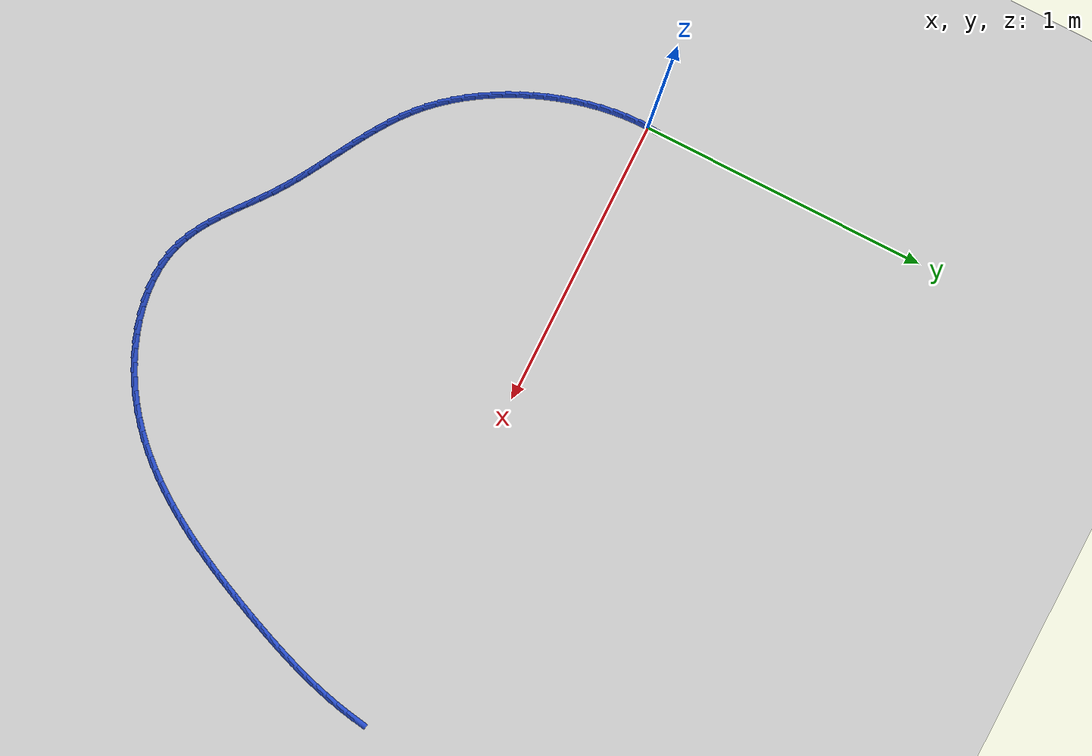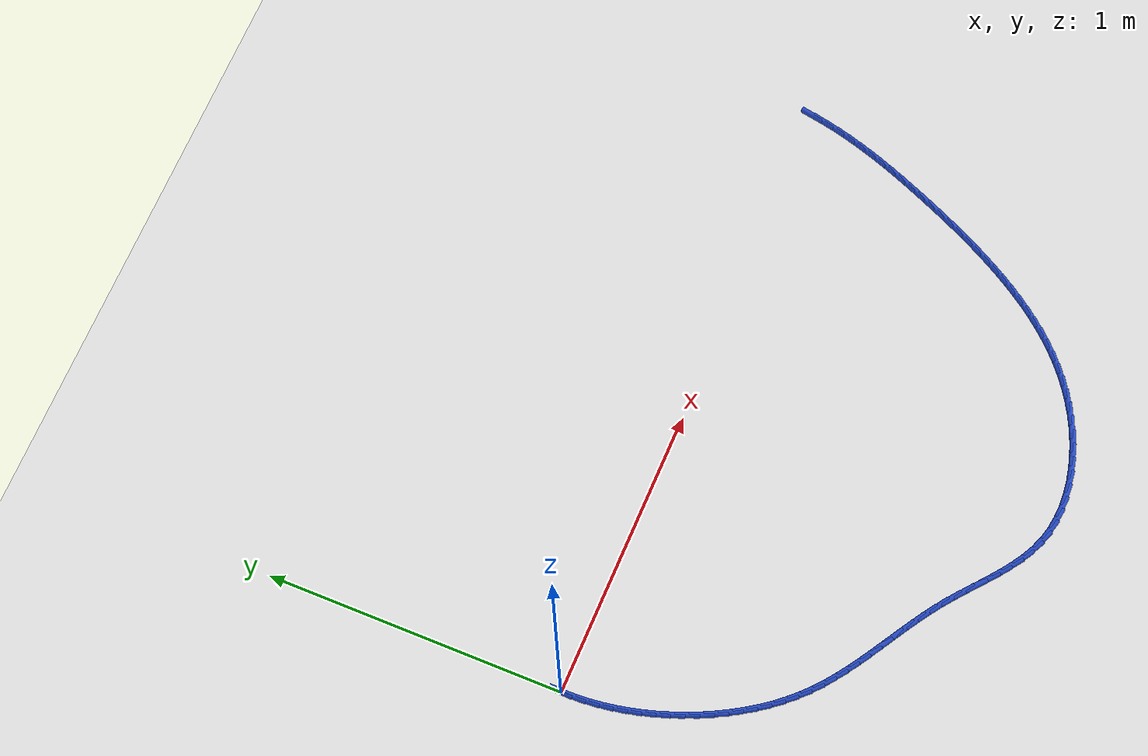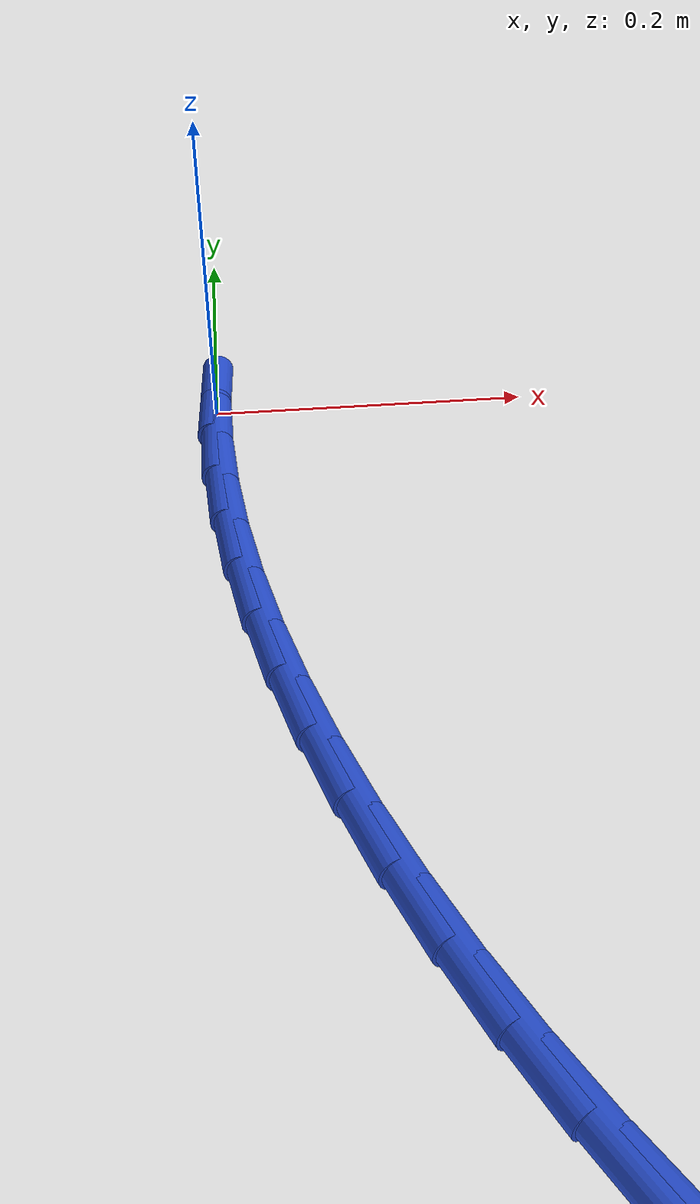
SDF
<sdf version="1.6">
 <world name="default">
  <model name="ground_plane">
   <static>1</static>
   <link name="link">
    <collision name="collision">
     <geometry><plane><normal>0 0 1</normal><size>100 100</size></plane></geometry>
     <surface><friction><ode><mu>100</mu><mu2>50</mu2></ode></friction></surface>
    </collision>
    <visual name="visual">
     <cast_shadows>0</cast_shadows>
     <geometry><plane><normal>0 0 1</normal><size>100 100</size></plane></geometry>
     <material>
      <script><uri>file://media/materials/scripts/gazebo.material</uri><name>Gazebo/WhiteGlow</name></script>
     </material>
    </visual>
   </link>
  </model>
  <model name="line">
   <link name="link_0">
    <pose>1.0408340855860843e-17 1.3877787807814457e-17 0.01 0 1.57 1.5257420830498938</pose>
    <collision name="collision">
     <geometry><cylinder><radius>0.01</radius><length>0.08</length></cylinder></geometry>
    </collision>
    <visual name="visual">
     <material>
      <script><name>Gazebo/Blue</name><uri>file://media/materials/scripts/gazebo.material</uri></script>
     </material>
     <geometry><cylinder><radius>0.01</radius><length>0.08</length></cylinder></geometry>
    </visual>
   </link>
   <link name="link_81">
    <pose>2.174339352551957 0.01610571546569134 0.01 0 1.57 1.3889501642694382</pose>
    <collision name="collision">
     <geometry><cylinder><radius>0.01</radius><length>0.08</length></cylinder></geometry>
    </collision>
    <visual name="visual">
     <material>
      <script><name>Gazebo/Blue</name><uri>file://media/materials/scripts/gazebo.material</uri></script>
     </material>
     <geometry><cylinder><radius>0.01</radius><length>0.08</length></cylinder></geometry>
    </visual>
   </link>
   <link name="link_82">
    <pose>2.1662585075446428 -0.02784118657049474 0.01 0 1.57 1.3545400528799303</pose>
    <collision name="collision">
     <geometry><cylinder><radius>0.01</radius><length>0.08</length></cylinder></geometry>
    </collision>
    <visual name="visual">
     <material>
      <script><name>Gazebo/Blue</name><uri>file://media/materials/scripts/gazebo.material</uri></script>
     </material>
     <geometry><cylinder><radius>0.01</radius><length>0.08</length></cylinder></geometry>
    </visual>
   </link>
   <link name="link_83">
    <pose>2.156690890659331 -0.07139137244277999 0.01 0 1.57 1.322704913757637</pose>
    <collision name="collision">
     <geometry><cylinder><radius>0.01</radius><length>0.08</length></cylinder></geometry>
    </collision>
    <visual name="visual">
     <material>
      <script><name>Gazebo/Blue</name><uri>file://media/materials/scripts/gazebo.material</uri></script>
     </material>
     <geometry><cylinder><radius>0.01</radius><length>0.08</length></cylinder></geometry>
    </visual>
   </link>
   <link name="link_84">
    <pose>2.1457542682107396 -0.11456624707189816 0.01 0 1.57 1.2935052513373297</pose>
    <collision name="collision">
     <geometry><cylinder><radius>0.01</radius><length>0.08</length></cylinder></geometry>
    </collision>
    <visual name="visual">
     <material>
      <script><name>Gazebo/Blue</name><uri>file://media/materials/scripts/gazebo.material</uri></script>
     </material>
     <geometry><cylinder><radius>0.01</radius><length>0.08</length></cylinder></geometry>
    </visual>
   </link>
   <link name="link_85">
    <pose>2.1335664065135855 -0.15738721537858238 0.01 0 1.57 1.2669749650793514</pose>
    <collision name="collision">
     <geometry><cylinder><radius>0.01</radius><length>0.08</length></cylinder></geometry>
    </collision>
    <visual name="visual">
     <material>
      <script><name>Gazebo/Blue</name><uri>file://media/materials/scripts/gazebo.material</uri></script>
     </material>
     <geometry><cylinder><radius>0.01</radius><length>0.08</length></cylinder></geometry>
    </visual>
   </link>
   <link name="link_86">
    <pose>2.120245071882583 -0.19987568228356556 0.01 0 1.57 1.2431272048756725</pose>
    <collision name="collision">
     <geometry><cylinder><radius>0.01</radius><length>0.08</length></cylinder></geometry>
    </collision>
    <visual name="visual">
     <material>
      <script><name>Gazebo/Blue</name><uri>file://media/materials/scripts/gazebo.material</uri></script>
     </material>
     <geometry><cylinder><radius>0.01</radius><length>0.08</length></cylinder></geometry>
    </visual>
   </link>
   <link name="link_87">
    <pose>2.1059080306324516 -0.24205305270758168 0.01 0 1.57 1.2219599957089848</pose>
    <collision name="collision">
     <geometry><cylinder><radius>0.01</radius><length>0.08</length></cylinder></geometry>
    </collision>
    <visual name="visual">
     <material>
      <script><name>Gazebo/Blue</name><uri>file://media/materials/scripts/gazebo.material</uri></script>
     </material>
     <geometry><cylinder><radius>0.01</radius><length>0.08</length></cylinder></geometry>
    </visual>
   </link>
   <link name="link_88">
    <pose>2.0906730490779064 -0.2839407315713621 0.01 0 1.57 1.203461397400954</pose>
    <collision name="collision">
     <geometry><cylinder><radius>0.01</radius><length>0.08</length></cylinder></geometry>
    </collision>
    <visual name="visual">
     <material>
      <script><name>Gazebo/Blue</name><uri>file://media/materials/scripts/gazebo.material</uri></script>
     </material>
     <geometry><cylinder><radius>0.01</radius><length>0.08</length></cylinder></geometry>
    </visual>
   </link>
   <link name="link_89">
    <pose>2.0746578935336646 -0.3255601237956408 0.01 0 1.57 1.1876140702316524</pose>
    <collision name="collision">
     <geometry><cylinder><radius>0.01</radius><length>0.08</length></cylinder></geometry>
    </collision>
    <visual name="visual">
     <material>
      <script><name>Gazebo/Blue</name><uri>file://media/materials/scripts/gazebo.material</uri></script>
     </material>
     <geometry><cylinder><radius>0.01</radius><length>0.08</length></cylinder></geometry>
    </visual>
   </link>
   <link name="link_90">
    <pose>2.057980330314442 -0.36693263430115075 0.01 0 1.57 1.1743991973009729</pose>
    <collision name="collision">
     <geometry><cylinder><radius>0.01</radius><length>0.08</length></cylinder></geometry>
    </collision>
    <visual name="visual">
     <material>
      <script><name>Gazebo/Blue</name><uri>file://media/materials/scripts/gazebo.material</uri></script>
     </material>
     <geometry><cylinder><radius>0.01</radius><length>0.08</length></cylinder></geometry>
    </visual>
   </link>
   <link name="link_91">
    <pose>2.0407581257349565 -0.40807966800862494 0.01 0 1.57 1.1637997670919964</pose>
    <collision name="collision">
     <geometry><cylinder><radius>0.01</radius><length>0.08</length></cylinder></geometry>
    </collision>
    <visual name="visual">
     <material>
      <script><name>Gazebo/Blue</name><uri>file://media/materials/scripts/gazebo.material</uri></script>
     </material>
     <geometry><cylinder><radius>0.01</radius><length>0.08</length></cylinder></geometry>
    </visual>
   </link>
   <link name="link_92">
    <pose>2.023109046019623 -0.44902262981094 0.01 0 1.57 1.1549796135763377</pose>
    <collision name="collision">
     <geometry><cylinder><radius>0.01</radius><length>0.08</length></cylinder></geometry>
    </collision>
    <visual name="visual">
     <material>
      <script><name>Gazebo/Blue</name><uri>file://media/materials/scripts/gazebo.material</uri></script>
     </material>
     <geometry><cylinder><radius>0.01</radius><length>0.08</length></cylinder></geometry>
    </visual>
   </link>
   <link name="link_93">
    <pose>2.0051155618706558 -0.4897720361724187 0.01 0 1.57 1.1447706381986502</pose>
    <collision name="collision">
     <geometry><cylinder><radius>0.01</radius><length>0.08</length></cylinder></geometry>
    </collision>
    <visual name="visual">
     <material>
      <script><name>Gazebo/Blue</name><uri>file://media/materials/scripts/gazebo.material</uri></script>
     </material>
     <geometry><cylinder><radius>0.01</radius><length>0.08</length></cylinder></geometry>
    </visual>
   </link>
   <link name="link_94">
    <pose>1.9867247132834671 -0.5302966241054129 0.01 0 1.57 1.1324091604863993</pose>
    <collision name="collision">
     <geometry><cylinder><radius>0.01</radius><length>0.08</length></cylinder></geometry>
    </collision>
    <visual name="visual">
     <material>
      <script><name>Gazebo/Blue</name><uri>file://media/materials/scripts/gazebo.material</uri></script>
     </material>
     <geometry><cylinder><radius>0.01</radius><length>0.08</length></cylinder></geometry>
    </visual>
   </link>
   <link name="link_95">
    <pose>1.9678510623096768 -0.5705551113974986 0.01 0 1.57 1.1178919904817513</pose>
    <collision name="collision">
     <geometry><cylinder><radius>0.01</radius><length>0.08</length></cylinder></geometry>
    </collision>
    <visual name="visual">
     <material>
      <script><name>Gazebo/Blue</name><uri>file://media/materials/scripts/gazebo.material</uri></script>
     </material>
     <geometry><cylinder><radius>0.01</radius><length>0.08</length></cylinder></geometry>
    </visual>
   </link>
   <link name="link_96">
    <pose>1.9484091710009055 -0.6105062158362525 0.01 0 1.57 1.1012203164192498</pose>
    <collision name="collision">
     <geometry><cylinder><radius>0.01</radius><length>0.08</length></cylinder></geometry>
    </collision>
    <visual name="visual">
     <material>
      <script><name>Gazebo/Blue</name><uri>file://media/materials/scripts/gazebo.material</uri></script>
     </material>
     <geometry><cylinder><radius>0.01</radius><length>0.08</length></cylinder></geometry>
    </visual>
   </link>
   <link name="link_97">
    <pose>1.9283136014087723 -0.6501086552092494 0.01 0 1.57 1.082401728507617</pose>
    <collision name="collision">
     <geometry><cylinder><radius>0.01</radius><length>0.08</length></cylinder></geometry>
    </collision>
    <visual name="visual">
     <material>
      <script><name>Gazebo/Blue</name><uri>file://media/materials/scripts/gazebo.material</uri></script>
     </material>
     <geometry><cylinder><radius>0.01</radius><length>0.08</length></cylinder></geometry>
    </visual>
   </link>
   <link name="link_98">
    <pose>1.9074789155848977 -0.6893211473040662 0.01 0 1.57 1.061452505541421</pose>
    <collision name="collision">
     <geometry><cylinder><radius>0.01</radius><length>0.08</length></cylinder></geometry>
    </collision>
    <visual name="visual">
     <material>
      <script><name>Gazebo/Blue</name><uri>file://media/materials/scripts/gazebo.material</uri></script>
     </material>
     <geometry><cylinder><radius>0.01</radius><length>0.08</length></cylinder></geometry>
    </visual>
   </link>
   <link name="link_99">
    <pose>1.8858196755809022 -0.7281024099082791 0.01 0 1.57 1.0383853793921216</pose>
    <collision name="collision">
     <geometry><cylinder><radius>0.01</radius><length>0.08</length></cylinder></geometry>
    </collision>
    <visual name="visual">
     <material>
      <script><name>Gazebo/Blue</name><uri>file://media/materials/scripts/gazebo.material</uri></script>
     </material>
     <geometry><cylinder><radius>0.01</radius><length>0.08</length></cylinder></geometry>
    </visual>
   </link>
   <link name="link_100">
    <pose>1.8632503416403992 -0.7664100434904361 0.01 0 1.57 1.0127249083158532</pose>
    <collision name="collision">
     <geometry><cylinder><radius>0.01</radius><length>0.08</length></cylinder></geometry>
    </collision>
    <visual name="visual">
     <material>
      <script><name>Gazebo/Blue</name><uri>file://media/materials/scripts/gazebo.material</uri></script>
     </material>
     <geometry><cylinder><radius>0.01</radius><length>0.08</length></cylinder></geometry>
    </visual>
   </link>
   <link name="link_101">
    <pose>1.8396819284599766 -0.8041638344472414 0.01 0 1.57 0.9838230003383691</pose>
    <collision name="collision">
     <geometry><cylinder><radius>0.01</radius><length>0.08</length></cylinder></geometry>
    </collision>
    <visual name="visual">
     <material>
      <script><name>Gazebo/Blue</name><uri>file://media/materials/scripts/gazebo.material</uri></script>
     </material>
     <geometry><cylinder><radius>0.01</radius><length>0.08</length></cylinder></geometry>
    </visual>
   </link>
   <link name="link_102">
    <pose>1.8150212505072683 -0.8412374726460661 0.01 0 1.57 0.9515837591283303</pose>
    <collision name="collision">
     <geometry><cylinder><radius>0.01</radius><length>0.08</length></cylinder></geometry>
    </collision>
    <visual name="visual">
     <material>
      <script><name>Gazebo/Blue</name><uri>file://media/materials/scripts/gazebo.material</uri></script>
     </material>
     <geometry><cylinder><radius>0.01</radius><length>0.08</length></cylinder></geometry>
    </visual>
   </link>
   <link name="link_103">
    <pose>1.7891748676470876 -0.877501853747978 0.01 0 1.57 0.9159608502179118</pose>
    <collision name="collision">
     <geometry><cylinder><radius>0.01</radius><length>0.08</length></cylinder></geometry>
    </collision>
    <visual name="visual">
     <material>
      <script><name>Gazebo/Blue</name><uri>file://media/materials/scripts/gazebo.material</uri></script>
     </material>
     <geometry><cylinder><radius>0.01</radius><length>0.08</length></cylinder></geometry>
    </visual>
   </link>
   <link name="link_104">
    <pose>1.7620493397442496 -0.912827873414045 0.01 0 1.57 0.8769317698395016</pose>
    <collision name="collision">
     <geometry><cylinder><radius>0.01</radius><length>0.08</length></cylinder></geometry>
    </collision>
    <visual name="visual">
     <material>
      <script><name>Gazebo/Blue</name><uri>file://media/materials/scripts/gazebo.material</uri></script>
     </material>
     <geometry><cylinder><radius>0.01</radius><length>0.08</length></cylinder></geometry>
    </visual>
   </link>
   <link name="link_105">
    <pose>1.7335512266635689 -0.9470864273053344 0.01 0 1.57 0.8345104075909775</pose>
    <collision name="collision">
     <geometry><cylinder><radius>0.01</radius><length>0.08</length></cylinder></geometry>
    </collision>
    <visual name="visual">
     <material>
      <script><name>Gazebo/Blue</name><uri>file://media/materials/scripts/gazebo.material</uri></script>
     </material>
     <geometry><cylinder><radius>0.01</radius><length>0.08</length></cylinder></geometry>
    </visual>
   </link>
   <link name="link_106">
    <pose>1.7035870882698592 -0.9801484110829143 0.01 0 1.57 0.7887605562742858</pose>
    <collision name="collision">
     <geometry><cylinder><radius>0.01</radius><length>0.08</length></cylinder></geometry>
    </collision>
    <visual name="visual">
     <material>
      <script><name>Gazebo/Blue</name><uri>file://media/materials/scripts/gazebo.material</uri></script>
     </material>
     <geometry><cylinder><radius>0.01</radius><length>0.08</length></cylinder></geometry>
    </visual>
   </link>
   <link name="link_107">
    <pose>1.6720634844279376 -1.0118847204078518 0.01 0 1.57 0.7398094084082487</pose>
    <collision name="collision">
     <geometry><cylinder><radius>0.01</radius><length>0.08</length></cylinder></geometry>
    </collision>
    <visual name="visual">
     <material>
      <script><name>Gazebo/Blue</name><uri>file://media/materials/scripts/gazebo.material</uri></script>
     </material>
     <geometry><cylinder><radius>0.01</radius><length>0.08</length></cylinder></geometry>
    </visual>
   </link>
   <link name="link_108">
    <pose>1.6388869750026172 -1.042166250941214 0.01 0 1.57 0.6878595835521787</pose>
    <collision name="collision">
     <geometry><cylinder><radius>0.01</radius><length>0.08</length></cylinder></geometry>
    </collision>
    <visual name="visual">
     <material>
      <script><name>Gazebo/Blue</name><uri>file://media/materials/scripts/gazebo.material</uri></script>
     </material>
     <geometry><cylinder><radius>0.01</radius><length>0.08</length></cylinder></geometry>
    </visual>
   </link>
   <link name="link_109">
    <pose>1.6039641198587127 -1.0708638983440688 0.01 0 1.57 0.6331978047980353</pose>
    <collision name="collision">
     <geometry><cylinder><radius>0.01</radius><length>0.08</length></cylinder></geometry>
    </collision>
    <visual name="visual">
     <material>
      <script><name>Gazebo/Blue</name><uri>file://media/materials/scripts/gazebo.material</uri></script>
     </material>
     <geometry><cylinder><radius>0.01</radius><length>0.08</length></cylinder></geometry>
    </visual>
   </link>
   <link name="link_110">
    <pose>1.567201478861039 -1.0978485582774842 0.01 0 1.57 0.5761981876365603</pose>
    <collision name="collision">
     <geometry><cylinder><radius>0.01</radius><length>0.08</length></cylinder></geometry>
    </collision>
    <visual name="visual">
     <material>
      <script><name>Gazebo/Blue</name><uri>file://media/materials/scripts/gazebo.material</uri></script>
     </material>
     <geometry><cylinder><radius>0.01</radius><length>0.08</length></cylinder></geometry>
    </visual>
   </link>
   <link name="link_111">
    <pose>1.528505616951141 -1.1229911248851958 0.01 0 1.57 0.517734283548459</pose>
    <collision name="collision">
     <geometry><cylinder><radius>0.01</radius><length>0.08</length></cylinder></geometry>
    </collision>
    <visual name="visual">
     <material>
      <script><name>Gazebo/Blue</name><uri>file://media/materials/scripts/gazebo.material</uri></script>
     </material>
     <geometry><cylinder><radius>0.01</radius><length>0.08</length></cylinder></geometry>
    </visual>
   </link>
   <link name="link_112">
    <pose>1.4878659932855807 -1.146137716907211 0.01 0 1.57 0.45907462729926657</pose>
    <collision name="collision">
     <geometry><cylinder><radius>0.01</radius><length>0.08</length></cylinder></geometry>
    </collision>
    <visual name="visual">
     <material>
      <script><name>Gazebo/Blue</name><uri>file://media/materials/scripts/gazebo.material</uri></script>
     </material>
     <geometry><cylinder><radius>0.01</radius><length>0.08</length></cylinder></geometry>
    </visual>
   </link>
   <link name="link_113">
    <pose>1.4455653073479067 -1.167046809482729 0.01 0 1.57 0.3994337091625199</pose>
    <collision name="collision">
     <geometry><cylinder><radius>0.01</radius><length>0.08</length></cylinder></geometry>
    </collision>
    <visual name="visual">
     <material>
      <script><name>Gazebo/Blue</name><uri>file://media/materials/scripts/gazebo.material</uri></script>
     </material>
     <geometry><cylinder><radius>0.01</radius><length>0.08</length></cylinder></geometry>
    </visual>
   </link>
   <link name="link_114">
    <pose>1.401951070203127 -1.18545750688054 0.01 0 1.57 0.3376398831796581</pose>
    <collision name="collision">
     <geometry><cylinder><radius>0.01</radius><length>0.08</length></cylinder></geometry>
    </collision>
    <visual name="visual">
     <material>
      <script><name>Gazebo/Blue</name><uri>file://media/materials/scripts/gazebo.material</uri></script>
     </material>
     <geometry><cylinder><radius>0.01</radius><length>0.08</length></cylinder></geometry>
    </visual>
   </link>
   <link name="link_115">
    <pose>1.3573707929162495 -1.201108913369432 0.01 0 1.57 0.2725070993879564</pose>
    <collision name="collision">
     <geometry><cylinder><radius>0.01</radius><length>0.08</length></cylinder></geometry>
    </collision>
    <visual name="visual">
     <material>
      <script><name>Gazebo/Blue</name><uri>file://media/materials/scripts/gazebo.material</uri></script>
     </material>
     <geometry><cylinder><radius>0.01</radius><length>0.08</length></cylinder></geometry>
    </visual>
   </link>
   <link name="link_116">
    <pose>1.3121719865522812 -1.2137401332181945 0.01 0 1.57 0.2028068590333508</pose>
    <collision name="collision">
     <geometry><cylinder><radius>0.01</radius><length>0.08</length></cylinder></geometry>
    </collision>
    <visual name="visual">
     <material>
      <script><name>Gazebo/Blue</name><uri>file://media/materials/scripts/gazebo.material</uri></script>
     </material>
     <geometry><cylinder><radius>0.01</radius><length>0.08</length></cylinder></geometry>
    </visual>
   </link>
   <link name="link_117">
    <pose>1.2667021621762322 -1.2230902706956162 0.01 0 1.57 0.12726033859105698</pose>
    <collision name="collision">
     <geometry><cylinder><radius>0.01</radius><length>0.08</length></cylinder></geometry>
    </collision>
    <visual name="visual">
     <material>
      <script><name>Gazebo/Blue</name><uri>file://media/materials/scripts/gazebo.material</uri></script>
     </material>
     <geometry><cylinder><radius>0.01</radius><length>0.08</length></cylinder></geometry>
    </visual>
   </link>
   <link name="link_118">
    <pose>1.2213088308531093 -1.2288984300704857 0.01 0 1.57 0.04456277416726064</pose>
    <collision name="collision">
     <geometry><cylinder><radius>0.01</radius><length>0.08</length></cylinder></geometry>
    </collision>
    <visual name="visual">
     <material>
      <script><name>Gazebo/Blue</name><uri>file://media/materials/scripts/gazebo.material</uri></script>
     </material>
     <geometry><cylinder><radius>0.01</radius><length>0.08</length></cylinder></geometry>
    </visual>
   </link>
   <link name="link_119">
    <pose>1.1763395036479198 -1.2309037156115923 0.01 0 1.57 -0.046540710133697705</pose>
    <collision name="collision">
     <geometry><cylinder><radius>0.01</radius><length>0.08</length></cylinder></geometry>
    </collision>
    <visual name="visual">
     <material>
      <script><name>Gazebo/Blue</name><uri>file://media/materials/scripts/gazebo.material</uri></script>
     </material>
     <geometry><cylinder><radius>0.01</radius><length>0.08</length></cylinder></geometry>
    </visual>
   </link>
   <link name="link_120">
    <pose>1.132141691625673 -1.2288452315877252 0.01 0 1.57 -0.14710350013031878</pose>
    <collision name="collision">
     <geometry><cylinder><radius>0.01</radius><length>0.08</length></cylinder></geometry>
    </collision>
    <visual name="visual">
     <material>
      <script><name>Gazebo/Blue</name><uri>file://media/materials/scripts/gazebo.material</uri></script>
     </material>
     <geometry><cylinder><radius>0.01</radius><length>0.08</length></cylinder></geometry>
    </visual>
   </link>
   <link name="link_121">
    <pose>1.0890629058513754 -1.2224620822676724 0.01 0 1.57 -0.25773088698406754</pose>
    <collision name="collision">
     <geometry><cylinder><radius>0.01</radius><length>0.08</length></cylinder></geometry>
    </collision>
    <visual name="visual">
     <material>
      <script><name>Gazebo/Blue</name><uri>file://media/materials/scripts/gazebo.material</uri></script>
     </material>
     <geometry><cylinder><radius>0.01</radius><length>0.08</length></cylinder></geometry>
    </visual>
   </link>
   <link name="link_122">
    <pose>1.0474506573900362 -1.2114933719202239 0.01 0 1.57 -0.37432228619774877</pose>
    <collision name="collision">
     <geometry><cylinder><radius>0.01</radius><length>0.08</length></cylinder></geometry>
    </collision>
    <visual name="visual">
     <material>
      <script><name>Gazebo/Blue</name><uri>file://media/materials/scripts/gazebo.material</uri></script>
     </material>
     <geometry><cylinder><radius>0.01</radius><length>0.08</length></cylinder></geometry>
    </visual>
   </link>
   <link name="link_123">
    <pose>1.0075591086466498 -1.1958222137726855 0.01 0 1.57 -0.47650148089441435</pose>
    <collision name="collision">
     <geometry><cylinder><radius>0.01</radius><length>0.08</length></cylinder></geometry>
    </collision>
    <visual name="visual">
     <material>
      <script><name>Gazebo/Blue</name><uri>file://media/materials/scripts/gazebo.material</uri></script>
     </material>
     <geometry><cylinder><radius>0.01</radius><length>0.08</length></cylinder></geometry>
    </visual>
   </link>
   <link name="link_124">
    <pose>0.9691960832542497 -1.1760202877836627 0.01 0 1.57 -0.5572531956582251</pose>
    <collision name="collision">
     <geometry><cylinder><radius>0.01</radius><length>0.08</length></cylinder></geometry>
    </collision>
    <visual name="visual">
     <material>
      <script><name>Gazebo/Blue</name><uri>file://media/materials/scripts/gazebo.material</uri></script>
     </material>
     <geometry><cylinder><radius>0.01</radius><length>0.08</length></cylinder></geometry>
    </visual>
   </link>
   <link name="link_125">
    <pose>0.9320361562870637 -1.1528648364358998 0.01 0 1.57 -0.6168794454758583</pose>
    <collision name="collision">
     <geometry><cylinder><radius>0.01</radius><length>0.08</length></cylinder></geometry>
    </collision>
    <visual name="visual">
     <material>
      <script><name>Gazebo/Blue</name><uri>file://media/materials/scripts/gazebo.material</uri></script>
     </material>
     <geometry><cylinder><radius>0.01</radius><length>0.08</length></cylinder></geometry>
    </visual>
   </link>
   <link name="link_126">
    <pose>0.8957538793598869 -1.127133138403004 0.01 0 1.57 -0.6565038279605733</pose>
    <collision name="collision">
     <geometry><cylinder><radius>0.01</radius><length>0.08</length></cylinder></geometry>
    </collision>
    <visual name="visual">
     <material>
      <script><name>Gazebo/Blue</name><uri>file://media/materials/scripts/gazebo.material</uri></script>
     </material>
     <geometry><cylinder><radius>0.01</radius><length>0.08</length></cylinder></geometry>
    </visual>
   </link>
   <link name="link_127">
    <pose>0.860023804087516 -1.0996024723585842 0.01 0 1.57 -0.6773066620334233</pose>
    <collision name="collision">
     <geometry><cylinder><radius>0.01</radius><length>0.08</length></cylinder></geometry>
    </collision>
    <visual name="visual">
     <material>
      <script><name>Gazebo/Blue</name><uri>file://media/materials/scripts/gazebo.material</uri></script>
     </material>
     <geometry><cylinder><radius>0.01</radius><length>0.08</length></cylinder></geometry>
    </visual>
   </link>
   <link name="link_128">
    <pose>0.8245204820847455 -1.0710501169762479 0.01 0 1.57 -0.6801153007041731</pose>
    <collision name="collision">
     <geometry><cylinder><radius>0.01</radius><length>0.08</length></cylinder></geometry>
    </collision>
    <visual name="visual">
     <material>
      <script><name>Gazebo/Blue</name><uri>file://media/materials/scripts/gazebo.material</uri></script>
     </material>
     <geometry><cylinder><radius>0.01</radius><length>0.08</length></cylinder></geometry>
    </visual>
   </link>
   <link name="link_129">
    <pose>0.7889184649663709 -1.0422533509296028 0.01 0 1.57 -0.6652416320230573</pose>
    <collision name="collision">
     <geometry><cylinder><radius>0.01</radius><length>0.08</length></cylinder></geometry>
    </collision>
    <visual name="visual">
     <material>
      <script><name>Gazebo/Blue</name><uri>file://media/materials/scripts/gazebo.material</uri></script>
     </material>
     <geometry><cylinder><radius>0.01</radius><length>0.08</length></cylinder></geometry>
    </visual>
   </link>
   <link name="link_130">
    <pose>0.7528923043471871 -1.0139894528922562 0.01 0 1.57 -0.633084415538679</pose>
    <collision name="collision">
     <geometry><cylinder><radius>0.01</radius><length>0.08</length></cylinder></geometry>
    </collision>
    <visual name="visual">
     <material>
      <script><name>Gazebo/Blue</name><uri>file://media/materials/scripts/gazebo.material</uri></script>
     </material>
     <geometry><cylinder><radius>0.01</radius><length>0.08</length></cylinder></geometry>
    </visual>
   </link>
   <link name="link_131">
    <pose>0.7161289151292531 -0.9870106577775868 0.01 0 1.57 -0.5961731314675136</pose>
    <collision name="collision">
     <geometry><cylinder><radius>0.01</radius><length>0.08</length></cylinder></geometry>
    </collision>
    <visual name="visual">
     <material>
      <script><name>Gazebo/Blue</name><uri>file://media/materials/scripts/gazebo.material</uri></script>
     </material>
     <geometry><cylinder><radius>0.01</radius><length>0.08</length></cylinder></geometry>
    </visual>
   </link>
   <link name="link_132">
    <pose>0.6785801362931254 -0.9615325555954608 0.01 0 1.57 -0.5669968642724921</pose>
    <collision name="collision">
     <geometry><cylinder><radius>0.01</radius><length>0.08</length></cylinder></geometry>
    </collision>
    <visual name="visual">
     <material>
      <script><name>Gazebo/Blue</name><uri>file://media/materials/scripts/gazebo.material</uri></script>
     </material>
     <geometry><cylinder><radius>0.01</radius><length>0.08</length></cylinder></geometry>
    </visual>
   </link>
   <link name="link_133">
    <pose>0.6404523651913 -0.9372550888022093 0.01 0 1.57 -0.5462007498511943</pose>
    <collision name="collision">
     <geometry><cylinder><radius>0.01</radius><length>0.08</length></cylinder></geometry>
    </collision>
    <visual name="visual">
     <material>
      <script><name>Gazebo/Blue</name><uri>file://media/materials/scripts/gazebo.material</uri></script>
     </material>
     <geometry><cylinder><radius>0.01</radius><length>0.08</length></cylinder></geometry>
    </visual>
   </link>
   <link name="link_134">
    <pose>0.6019622882868587 -0.9138573576612289 0.01 0 1.57 -0.5338752901611719</pose>
    <collision name="collision">
     <geometry><cylinder><radius>0.01</radius><length>0.08</length></cylinder></geometry>
    </collision>
    <visual name="visual">
     <material>
      <script><name>Gazebo/Blue</name><uri>file://media/materials/scripts/gazebo.material</uri></script>
     </material>
     <geometry><cylinder><radius>0.01</radius><length>0.08</length></cylinder></geometry>
    </visual>
   </link>
   <link name="link_135">
    <pose>0.5633265920428829 -0.8910184624359156 0.01 0 1.57 -0.5301020473804986</pose>
    <collision name="collision">
     <geometry><cylinder><radius>0.01</radius><length>0.08</length></cylinder></geometry>
    </collision>
    <visual name="visual">
     <material>
      <script><name>Gazebo/Blue</name><uri>file://media/materials/scripts/gazebo.material</uri></script>
     </material>
     <geometry><cylinder><radius>0.01</radius><length>0.08</length></cylinder></geometry>
    </visual>
   </link>
   <link name="link_136">
    <pose>0.524761962922454 -0.8684175033896664 0.01 0 1.57 -0.5349807836746603</pose>
    <collision name="collision">
     <geometry><cylinder><radius>0.01</radius><length>0.08</length></cylinder></geometry>
    </collision>
    <visual name="visual">
     <material>
      <script><name>Gazebo/Blue</name><uri>file://media/materials/scripts/gazebo.material</uri></script>
     </material>
     <geometry><cylinder><radius>0.01</radius><length>0.08</length></cylinder></geometry>
    </visual>
   </link>
   <link name="link_137">
    <pose>0.4864850873886547 -0.8457335807858783 0.01 0 1.57 -0.5486386610022049</pose>
    <collision name="collision">
     <geometry><cylinder><radius>0.01</radius><length>0.08</length></cylinder></geometry>
    </collision>
    <visual name="visual">
     <material>
      <script><name>Gazebo/Blue</name><uri>file://media/materials/scripts/gazebo.material</uri></script>
     </material>
     <geometry><cylinder><radius>0.01</radius><length>0.08</length></cylinder></geometry>
    </visual>
   </link>
   <link name="link_138">
    <pose>0.4487126519045663 -0.8226457948879475 0.01 0 1.57 -0.5712200281725688</pose>
    <collision name="collision">
     <geometry><cylinder><radius>0.01</radius><length>0.08</length></cylinder></geometry>
    </collision>
    <visual name="visual">
     <material>
      <script><name>Gazebo/Blue</name><uri>file://media/materials/scripts/gazebo.material</uri></script>
     </material>
     <geometry><cylinder><radius>0.01</radius><length>0.08</length></cylinder></geometry>
    </visual>
   </link>
   <link name="link_139">
    <pose>0.41166134293327017 -0.7988332459592707 0.01 0 1.57 -0.6028546619422739</pose>
    <collision name="collision">
     <geometry><cylinder><radius>0.01</radius><length>0.08</length></cylinder></geometry>
    </collision>
    <visual name="visual">
     <material>
      <script><name>Gazebo/Blue</name><uri>file://media/materials/scripts/gazebo.material</uri></script>
     </material>
     <geometry><cylinder><radius>0.01</radius><length>0.08</length></cylinder></geometry>
    </visual>
   </link>
   <link name="link_140">
    <pose>0.3755478469378482 -0.7739750342632444 0.01 0 1.57 -0.6436022808183616</pose>
    <collision name="collision">
     <geometry><cylinder><radius>0.01</radius><length>0.08</length></cylinder></geometry>
    </collision>
    <visual name="visual">
     <material>
      <script><name>Gazebo/Blue</name><uri>file://media/materials/scripts/gazebo.material</uri></script>
     </material>
     <geometry><cylinder><radius>0.01</radius><length>0.08</length></cylinder></geometry>
    </visual>
   </link>
   <link name="link_141">
    <pose>0.3405888503813812 -0.7477502600632643 0.01 0 1.57 -0.6933731320793475</pose>
    <collision name="collision">
     <geometry><cylinder><radius>0.01</radius><length>0.08</length></cylinder></geometry>
    </collision>
    <visual name="visual">
     <material>
      <script><name>Gazebo/Blue</name><uri>file://media/materials/scripts/gazebo.material</uri></script>
     </material>
     <geometry><cylinder><radius>0.01</radius><length>0.08</length></cylinder></geometry>
    </visual>
   </link>
   <link name="link_142">
    <pose>0.30700103972695253 -0.7198380236227285 0.01 0 1.57 -0.7514802519775324</pose>
    <collision name="collision">
     <geometry><cylinder><radius>0.01</radius><length>0.08</length></cylinder></geometry>
    </collision>
    <visual name="visual">
     <material>
      <script><name>Gazebo/Blue</name><uri>file://media/materials/scripts/gazebo.material</uri></script>
     </material>
     <geometry><cylinder><radius>0.01</radius><length>0.08</length></cylinder></geometry>
    </visual>
   </link>
   <link name="link_143">
    <pose>0.2749946881955915 -0.6899324025337343 0.01 0 1.57 -0.8114430788277947</pose>
    <collision name="collision">
     <geometry><cylinder><radius>0.01</radius><length>0.08</length></cylinder></geometry>
    </collision>
    <visual name="visual">
     <material>
      <script><name>Gazebo/Blue</name><uri>file://media/materials/scripts/gazebo.material</uri></script>
     </material>
     <geometry><cylinder><radius>0.01</radius><length>0.08</length></cylinder></geometry>
    </visual>
   </link>
   <link name="link_144">
    <pose>0.24466971611385402 -0.6579851898403313 0.01 0 1.57 -0.8681981114073958</pose>
    <collision name="collision">
     <geometry><cylinder><radius>0.01</radius><length>0.08</length></cylinder></geometry>
    </collision>
    <visual name="visual">
     <material>
      <script><name>Gazebo/Blue</name><uri>file://media/materials/scripts/gazebo.material</uri></script>
     </material>
     <geometry><cylinder><radius>0.01</radius><length>0.08</length></cylinder></geometry>
    </visual>
   </link>
   <link name="link_145">
    <pose>0.2160330735713589 -0.6241652990050608 0.01 0 1.57 -0.9217930187982449</pose>
    <collision name="collision">
     <geometry><cylinder><radius>0.01</radius><length>0.08</length></cylinder></geometry>
    </collision>
    <visual name="visual">
     <material>
      <script><name>Gazebo/Blue</name><uri>file://media/materials/scripts/gazebo.material</uri></script>
     </material>
     <geometry><cylinder><radius>0.01</radius><length>0.08</length></cylinder></geometry>
    </visual>
   </link>
   <link name="link_146">
    <pose>0.18908880599654443 -0.5886484269651733 0.01 0 1.57 -0.9724777273638405</pose>
    <collision name="collision">
     <geometry><cylinder><radius>0.01</radius><length>0.08</length></cylinder></geometry>
    </collision>
    <visual name="visual">
     <material>
      <script><name>Gazebo/Blue</name><uri>file://media/materials/scripts/gazebo.material</uri></script>
     </material>
     <geometry><cylinder><radius>0.01</radius><length>0.08</length></cylinder></geometry>
    </visual>
   </link>
   <link name="link_147">
    <pose>0.16384095881785044 -0.5516102706579209 0.01 0 1.57 -1.0205292344123247</pose>
    <collision name="collision">
     <geometry><cylinder><radius>0.01</radius><length>0.08</length></cylinder></geometry>
    </collision>
    <visual name="visual">
     <material>
      <script><name>Gazebo/Blue</name><uri>file://media/materials/scripts/gazebo.material</uri></script>
     </material>
     <geometry><cylinder><radius>0.01</radius><length>0.08</length></cylinder></geometry>
    </visual>
   </link>
   <link name="link_148">
    <pose>0.14029357746371515 -0.5132265270205539 0.01 0 1.57 -1.0662394048950894</pose>
    <collision name="collision">
     <geometry><cylinder><radius>0.01</radius><length>0.08</length></cylinder></geometry>
    </collision>
    <visual name="visual">
     <material>
      <script><name>Gazebo/Blue</name><uri>file://media/materials/scripts/gazebo.material</uri></script>
     </material>
     <geometry><cylinder><radius>0.01</radius><length>0.08</length></cylinder></geometry>
    </visual>
   </link>
   <link name="link_149">
    <pose>0.11845070736257744 -0.47367289299032345 0.01 0 1.57 -1.1099067937168496</pose>
    <collision name="collision">
     <geometry><cylinder><radius>0.01</radius><length>0.08</length></cylinder></geometry>
    </collision>
    <visual name="visual">
     <material>
      <script><name>Gazebo/Blue</name><uri>file://media/materials/scripts/gazebo.material</uri></script>
     </material>
     <geometry><cylinder><radius>0.01</radius><length>0.08</length></cylinder></geometry>
    </visual>
   </link>
   <link name="link_150">
    <pose>0.0983163939428761 -0.43312506550448027 0.01 0 1.57 -1.1518318229313222</pose>
    <collision name="collision">
     <geometry><cylinder><radius>0.01</radius><length>0.08</length></cylinder></geometry>
    </collision>
    <visual name="visual">
     <material>
      <script><name>Gazebo/Blue</name><uri>file://media/materials/scripts/gazebo.material</uri></script>
     </material>
     <geometry><cylinder><radius>0.01</radius><length>0.08</length></cylinder></geometry>
    </visual>
   </link>
   <link name="link_151">
    <pose>0.07989468263304957 -0.39175874150027473 0.01 0 1.57 -1.1925007304760644</pose>
    <collision name="collision">
     <geometry><cylinder><radius>0.01</radius><length>0.08</length></cylinder></geometry>
    </collision>
    <visual name="visual">
     <material>
      <script><name>Gazebo/Blue</name><uri>file://media/materials/scripts/gazebo.material</uri></script>
     </material>
     <geometry><cylinder><radius>0.01</radius><length>0.08</length></cylinder></geometry>
    </visual>
   </link>
   <link name="link_152">
    <pose>0.06319540098447293 -0.3497413906083414 0.01 0 1.57 -1.2336185224923928</pose>
    <collision name="collision">
     <geometry><cylinder><radius>0.01</radius><length>0.08</length></cylinder></geometry>
    </collision>
    <visual name="visual">
     <material>
      <script><name>Gazebo/Blue</name><uri>file://media/materials/scripts/gazebo.material</uri></script>
     </material>
     <geometry><cylinder><radius>0.01</radius><length>0.08</length></cylinder></geometry>
    </visual>
   </link>
   <link name="link_153">
    <pose>0.04827354981511989 -0.3071762060128601 0.01 0 1.57 -1.276014151811609</pose>
    <collision name="collision">
     <geometry><cylinder><radius>0.01</radius><length>0.08</length></cylinder></geometry>
    </collision>
    <visual name="visual">
     <material>
      <script><name>Gazebo/Blue</name><uri>file://media/materials/scripts/gazebo.material</uri></script>
     </material>
     <geometry><cylinder><radius>0.01</radius><length>0.08</length></cylinder></geometry>
    </visual>
   </link>
   <link name="link_154">
    <pose>0.03520537245376997 -0.26413615520899114 0.01 0 1.57 -1.3198124256470156</pose>
    <collision name="collision">
     <geometry><cylinder><radius>0.01</radius><length>0.08</length></cylinder></geometry>
    </collision>
    <visual name="visual">
     <material>
      <script><name>Gazebo/Blue</name><uri>file://media/materials/scripts/gazebo.material</uri></script>
     </material>
     <geometry><cylinder><radius>0.01</radius><length>0.08</length></cylinder></geometry>
    </visual>
   </link>
   <link name="link_155">
    <pose>0.02406723571732073 -0.22069402998227666 0.01 0 1.57 -1.3651231859175983</pose>
    <collision name="collision">
     <geometry><cylinder><radius>0.01</radius><length>0.08</length></cylinder></geometry>
    </collision>
    <visual name="visual">
     <material>
      <script><name>Gazebo/Blue</name><uri>file://media/materials/scripts/gazebo.material</uri></script>
     </material>
     <geometry><cylinder><radius>0.01</radius><length>0.08</length></cylinder></geometry>
    </visual>
   </link>
   <link name="link_156">
    <pose>0.014935506422669623 -0.17692262211825813 0.01 0 1.57 -1.4120416034489842</pose>
    <collision name="collision">
     <geometry><cylinder><radius>0.01</radius><length>0.08</length></cylinder></geometry>
    </collision>
    <visual name="visual">
     <material>
      <script><name>Gazebo/Blue</name><uri>file://media/materials/scripts/gazebo.material</uri></script>
     </material>
     <geometry><cylinder><radius>0.01</radius><length>0.08</length></cylinder></geometry>
    </visual>
   </link>
   <link name="link_157">
    <pose>0.007886551386714527 -0.13289472340247943 0.01 0 1.57 -1.460643760664482</pose>
    <collision name="collision">
     <geometry><cylinder><radius>0.01</radius><length>0.08</length></cylinder></geometry>
    </collision>
    <visual name="visual">
     <material>
      <script><name>Gazebo/Blue</name><uri>file://media/materials/scripts/gazebo.material</uri></script>
     </material>
     <geometry><cylinder><radius>0.01</radius><length>0.08</length></cylinder></geometry>
    </visual>
   </link>
   <link name="link_158">
    <pose>0.0029967374263528456 -0.08868312562048195 0.01 0 1.57 -1.5109815717612645</pose>
    <collision name="collision">
     <geometry><cylinder><radius>0.01</radius><length>0.08</length></cylinder></geometry>
    </collision>
    <visual name="visual">
     <material>
      <script><name>Gazebo/Blue</name><uri>file://media/materials/scripts/gazebo.material</uri></script>
     </material>
     <geometry><cylinder><radius>0.01</radius><length>0.08</length></cylinder></geometry>
    </visual>
   </link>
   <link name="link_159">
    <pose>0.0003424313584821561 -0.04436062055780809 0.01 0 1.57 -1.5630772157245632</pose>
    <collision name="collision">
     <geometry><cylinder><radius>0.01</radius><length>0.08</length></cylinder></geometry>
    </collision>
    <visual name="visual">
     <material>
      <script><name>Gazebo/Blue</name><uri>file://media/materials/scripts/gazebo.material</uri></script>
     </material>
     <geometry><cylinder><radius>0.01</radius><length>0.08</length></cylinder></geometry>
    </visual>
   </link>
   <link name="link_160">
    <pose>1.734723475976807e-17 1.3877787807814457e-17 0.01 0 1.57 1.524675270314733</pose>
    <collision name="collision">
     <geometry><cylinder><radius>0.01</radius><length>0.08</length></cylinder></geometry>
    </collision>
    <visual name="visual">
     <material>
      <script><name>Gazebo/Blue</name><uri>file://media/materials/scripts/gazebo.material</uri></script>
     </material>
     <geometry><cylinder><radius>0.01</radius><length>0.08</length></cylinder></geometry>
    </visual>
   </link>
  </model>
 </world>
</sdf>
